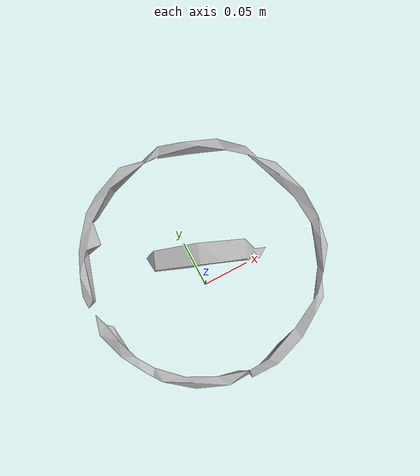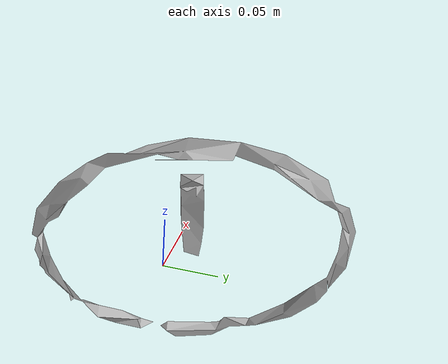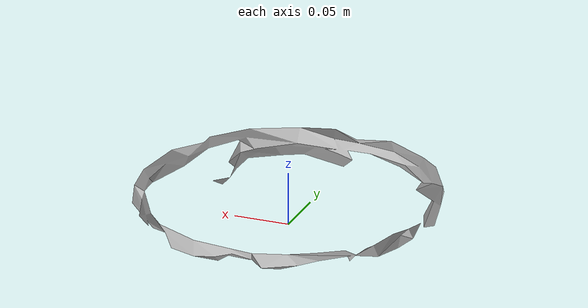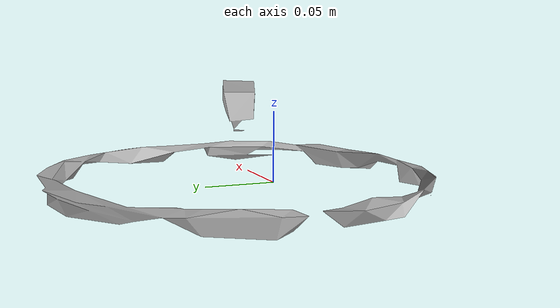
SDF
<?xml version='1.0'?>
<sdf version="1.4">
  <model name="028_skillet_lid">
    <static>false</static>
    <link name="link">
      <inertial>
        <pose>0.008456467787328226 0.023817368027399123 0.019355483458278575 0.39159029037341236 -1.5600120609626897 -0.7434944303958975</pose>
        <mass>0.21443481989413782</mass>
        <inertia>
          <ixx>0.0014194293706084867</ixx>
          <ixy>-1.5123025426036836e-19</ixy>
          <ixz>-1.6028914634978795e-21</ixz>
          <iyy>0.0007876849303351525</iyy>
          <iyz>-5.056355354057055e-21</iyz>
          <izz>0.0007454402414364815</izz>
        </inertia>
      </inertial>
      <collision name="collision">
        <geometry>
          <mesh>
            <!-- Use a downsampled mesh for collisions -->
            <uri>model:///028_skillet_lid/028_skillet_lid_250_collision.stl</uri>
	        </mesh>
        </geometry>
        <surface>
      </surface>
      </collision>
      <visual name="visual">
        <geometry>
          <mesh>
            <uri>model:///028_skillet_lid/textured.obj</uri>
	        </mesh>
        </geometry>
        <material>
          <script>
            <uri>model:///028_skillet_lid/028_skillet_lid.material</uri>
            <name>028_skillet_lid</name>
          </script>
        </material>
      </visual>
    </link>
  </model>
</sdf>
